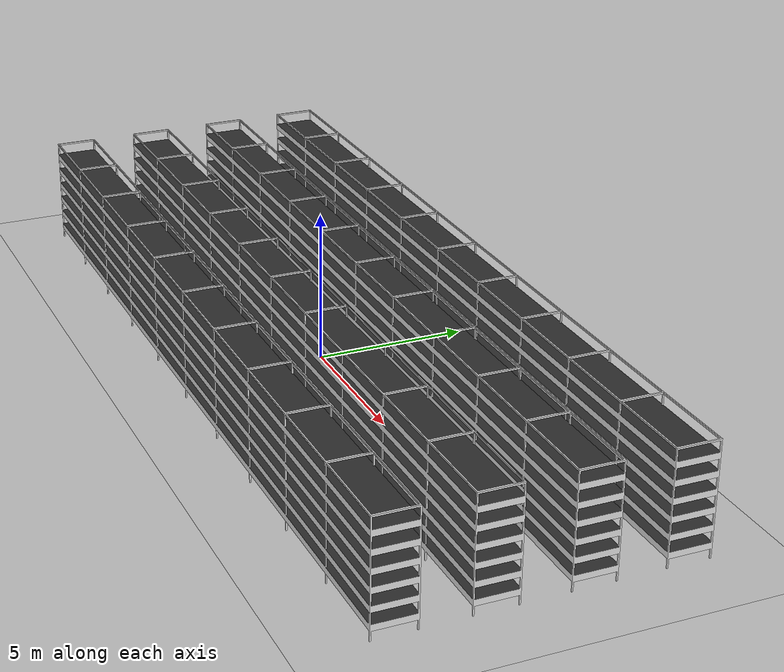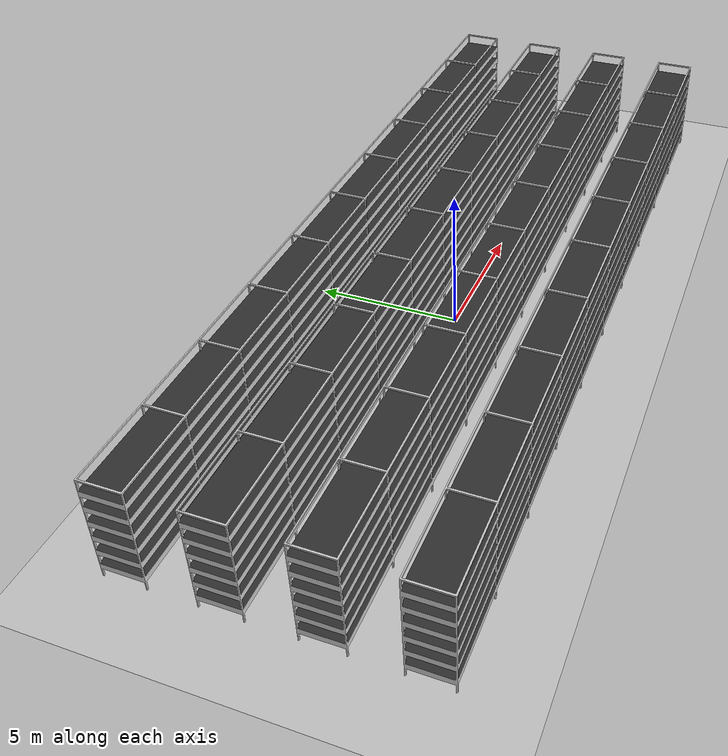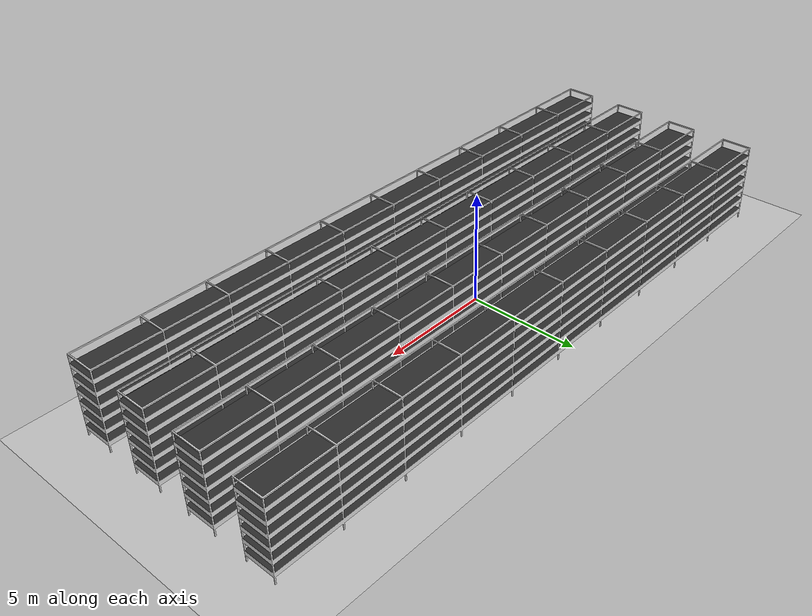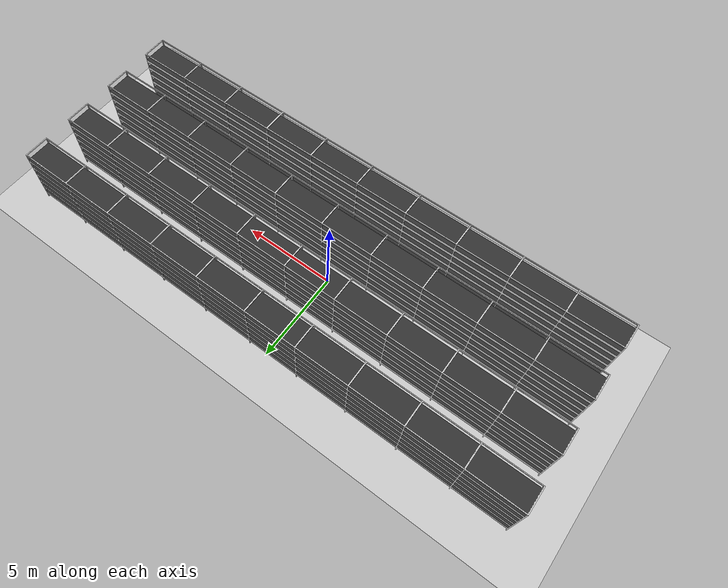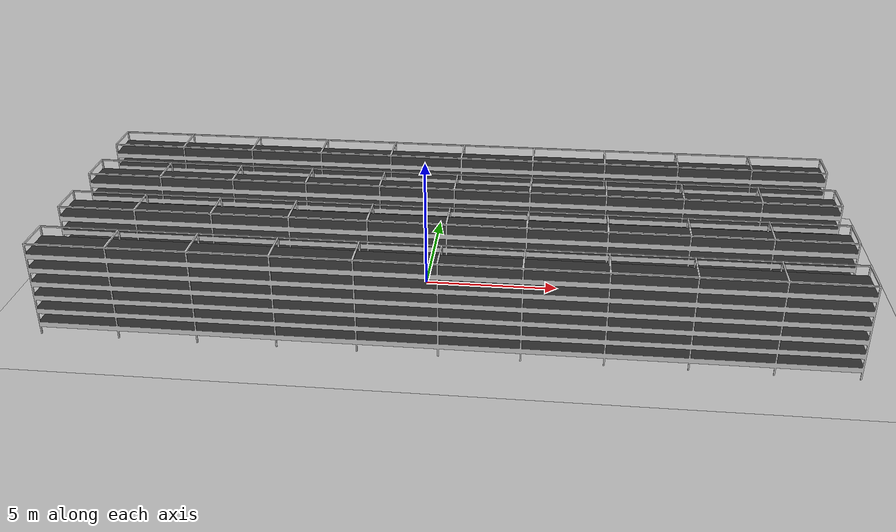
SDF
<sdf version="1.10">
 <world name="empty">
  <physics name="1ms" type="ignored">
   <max_step_size>0.001</max_step_size>
   <real_time_factor>1</real_time_factor>
   <real_time_update_rate>1000</real_time_update_rate>
  </physics>
  <plugin filename="gz-sim-physics-system" name="gz::sim::systems::Physics"/>
  <plugin filename="gz-sim-sensors-system" name="gz::sim::systems::Sensors">
   <render_engine>ogre2</render_engine>
  </plugin>
  <plugin filename="gz-sim-user-commands-system" name="gz::sim::systems::UserCommands"/>
  <plugin filename="gz-sim-scene-broadcaster-system" name="gz::sim::systems::SceneBroadcaster"/>
  <plugin filename="gz-sim-air-pressure-system" name="gz::sim::systems::AirPressure"/>
  <plugin filename="gz-sim-air-speed-system" name="gz::sim::systems::AirSpeed"/>
  <plugin filename="gz-sim-altimeter-system" name="gz::sim::systems::Altimeter"/>
  <plugin filename="gz-sim-imu-system" name="gz::sim::systems::Imu"/>
  <plugin filename="gz-sim-magnetometer-system" name="gz::sim::systems::Magnetometer"/>
  <plugin filename="gz-sim-navsat-system" name="gz::sim::systems::NavSat"/>
  <plugin filename="gz-sim-contact-system" name="gz::sim::systems::Contact"/>
  <gravity>0 0 -9.8000000000000007</gravity>
  <magnetic_field>5.5644999999999998e-06 2.2875799999999999e-05 -4.2388400000000002e-05</magnetic_field>
  <atmosphere type="adiabatic"/>
  <scene>
   <ambient>0.400000006 0.400000006 0.400000006 1</ambient>
   <background>0.699999988 0.699999988 0.699999988 1</background>
   <shadows>true</shadows>
   <grid>false</grid>
  </scene>
  <spherical_coordinates>
   <latitude_deg>0.0</latitude_deg>
   <longitude_deg>0.0</longitude_deg>
   <elevation>10.0</elevation>
   <heading_deg>0</heading_deg>
   <surface_model>EARTH_WGS84</surface_model>
  </spherical_coordinates>
  <model name="ground_plane">
   <static>true</static>
   <link name="link">
    <collision name="collision">
     <geometry><plane><normal>0 0 1</normal><size>40 10</size></plane></geometry>
    </collision>
    <visual name="visual">
     <geometry><plane><normal>0 0 1</normal><size>40 10</size></plane></geometry>
     <material>
      <ambient>0.800000012 0.800000012 0.800000012 1</ambient>
      <diffuse>0.800000012 0.800000012 0.800000012 1</diffuse>
      <specular>0.800000012 0.800000012 0.800000012 1</specular>
     </material>
    </visual>
    <inertial>
     <mass>1</mass>
     <inertia><ixx>1</ixx><ixy>0</ixy><ixz>0</ixz><iyy>1</iyy><iyz>0</iyz><izz>1</izz></inertia>
    </inertial>
   </link>
  </model>
  <model name="shelf_1">
   <static>true</static>
   <pose>-13.275 -5 0 0 0 0</pose>
   <link name="shelf_1_link">
    <inertial><mass>2</mass></inertial>
    <collision name="shelf_1_collision">
     <geometry>
      <mesh><uri>model://home/drone/diplomamunka/ros2_ws/src/fungi_drone/models/Polcrendszer_v02.dae</uri></mesh>
     </geometry>
    </collision>
    <visual name="shelf_1_visual">
     <geometry>
      <mesh><uri>model://home/drone/diplomamunka/ros2_ws/src/fungi_drone/models/Polcrendszer_v02.dae</uri></mesh>
     </geometry>
    </visual>
   </link>
  </model>
  <model name="shelf_2">
   <static>true</static>
   <pose>-13.275 -2.12 0 0 0 0</pose>
   <link name="shelf_2_link">
    <inertial><mass>2</mass></inertial>
    <collision name="shelf_2_collision">
     <geometry>
      <mesh><uri>model://home/drone/diplomamunka/ros2_ws/src/fungi_drone/models/Polcrendszer_v02.stl</uri></mesh>
     </geometry>
    </collision>
    <visual name="shelf_2_visual">
     <geometry>
      <mesh><uri>model://home/drone/diplomamunka/ros2_ws/src/fungi_drone/models/Polcrendszer_v02.dae</uri></mesh>
     </geometry>
    </visual>
   </link>
  </model>
  <model name="shelf_3">
   <static>true</static>
   <pose>-13.275 0.76 0 0 0 0</pose>
   <link name="shelf_3_link">
    <inertial><mass>2</mass></inertial>
    <collision name="shelf_3_collision">
     <geometry>
      <mesh><uri>model://home/drone/diplomamunka/ros2_ws/src/fungi_drone/models/Polcrendszer_v02.stl</uri></mesh>
     </geometry>
    </collision>
    <visual name="shelf_3_visual">
     <geometry>
      <mesh><uri>model://home/drone/diplomamunka/ros2_ws/src/fungi_drone/models/Polcrendszer_v02.dae</uri></mesh>
     </geometry>
    </visual>
   </link>
  </model>
  <model name="shelf_4">
   <static>true</static>
   <pose>-13.275 3.64 0 0 0 0</pose>
   <link name="shelf_4_link">
    <inertial><mass>2</mass></inertial>
    <collision name="shelf_4_collision">
     <geometry>
      <mesh><uri>model://home/drone/diplomamunka/ros2_ws/src/fungi_drone/models/Polcrendszer_v02.stl</uri></mesh>
     </geometry>
    </collision>
    <visual name="shelf_4_visual">
     <geometry>
      <mesh><uri>model://home/drone/diplomamunka/ros2_ws/src/fungi_drone/models/Polcrendszer_v02.dae</uri></mesh>
     </geometry>
    </visual>
   </link>
  </model>
  <light name="sun" type="directional">
   <pose>0 0 10 0 0 0</pose>
   <intensity>1</intensity>
   <direction>-0.5 0.10000000000000001 -0.90000000000000002</direction>
   <diffuse>0.800000012 0.800000012 0.800000012 1</diffuse>
   <specular>0.200000003 0.200000003 0.200000003 1</specular>
   <attenuation>
    <range>1000</range>
    <linear>0.01</linear>
    <constant>0.90000000000000002</constant>
    <quadratic>0.001</quadratic>
   </attenuation>
   <spot><inner_angle>0</inner_angle><outer_angle>0</outer_angle><falloff>0</falloff></spot>
  </light>
 </world>
</sdf>
